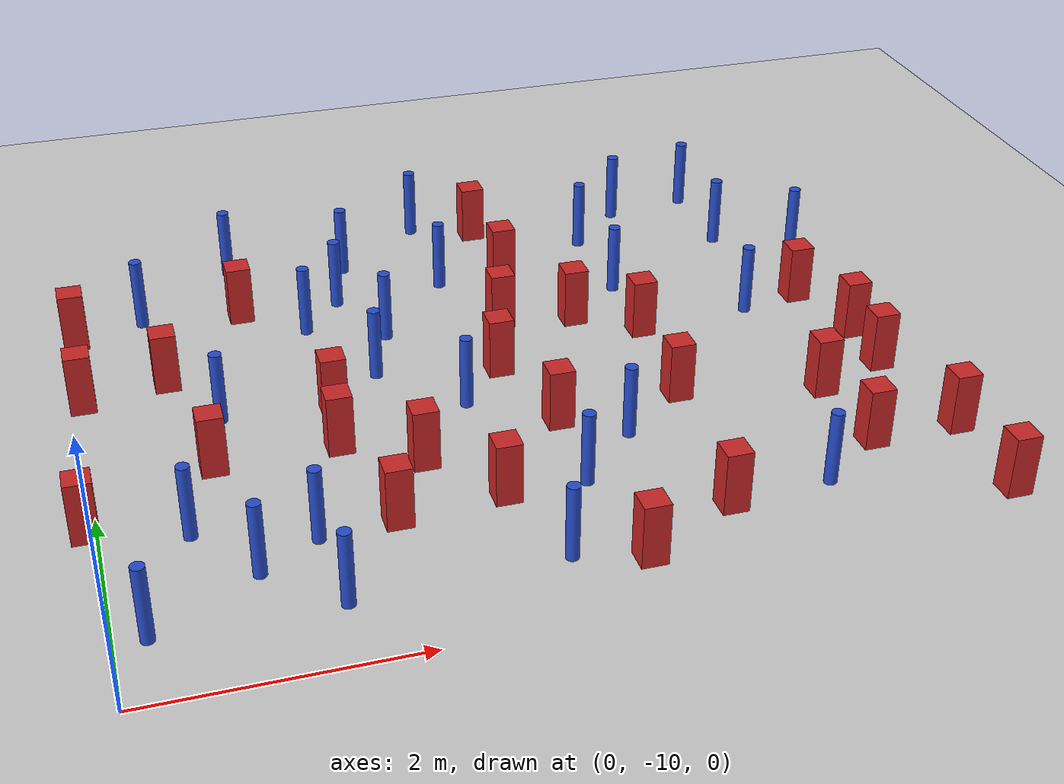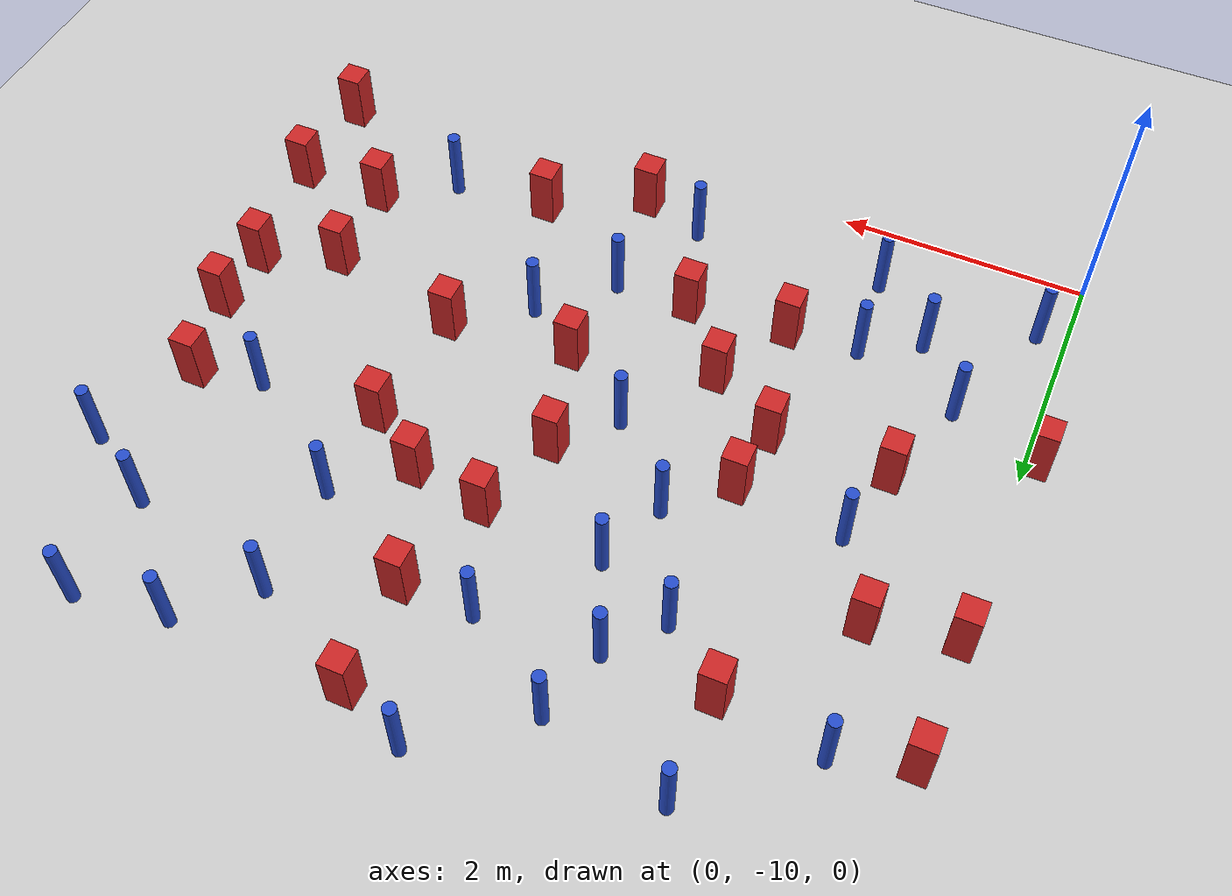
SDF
<sdf version="1.6">
 <world name="default">
  <model name="ground_plane">
   <static>1</static>
   <link name="link">
    <collision name="collision">
     <geometry><plane><normal>0 0 1</normal><size>100 100</size></plane></geometry>
     <surface><friction><ode><mu>100</mu><mu2>50</mu2></ode></friction></surface>
    </collision>
    <visual name="visual">
     <cast_shadows>0</cast_shadows>
     <geometry><plane><normal>0 0 1</normal><size>100 100</size></plane></geometry>
     <material>
      <ambient>1.0 1.0 1.0 1.0</ambient>
      <diffuse>0.8 0.8 0.8 1.0</diffuse>
      <specular>0.01 0.01 0.01 1.000000</specular>
     </material>
    </visual>
   </link>
  </model>
  <model name="pole_obstacle0">
   <static>true</static>
   <pose>5.14910917983 -9.02479563036 2.88873142074e-08 -9.9053668967e-09 4.60219948993e-07 -1.20965994957e-07</pose>
   <link name="link">
    <pose>0 0 0.3 0 -0 0</pose>
    <inertial>
     <mass>1</mass>
     <inertia><ixx>0.145833</ixx><ixy>0</ixy><ixz>0</ixz><iyy>0.145833</iyy><iyz>0</iyz><izz>0.125</izz></inertia>
    </inertial>
    <collision name="collision">
     <geometry><cylinder><radius>0.05</radius><length>.6</length></cylinder></geometry>
    </collision>
    <visual name="visual">
     <geometry><cylinder><radius>0.05</radius><length>.6</length></cylinder></geometry>
     <material>
      <script><name>Gazebo/Blue</name><uri>file://media/materials/scripts/gazebo.material</uri></script>
     </material>
    </visual>
   </link>
  </model>
  <model name="pole_obstacle2">
   <static>true</static>
   <pose>1.01651458315 -8.93385281026 2.88873142074e-08 -9.90536690572e-09 4.60219948972e-07 -1.20965994971e-07</pose>
   <link name="link">
    <pose>0 0 0.3 0 -0 0</pose>
    <inertial>
     <mass>1</mass>
     <inertia><ixx>0.145833</ixx><ixy>0</ixy><ixz>0</ixz><iyy>0.145833</iyy><iyz>0</iyz><izz>0.125</izz></inertia>
    </inertial>
    <collision name="collision">
     <geometry><cylinder><radius>0.05</radius><length>.6</length></cylinder></geometry>
    </collision>
    <visual name="visual">
     <geometry><cylinder><radius>0.05</radius><length>.6</length></cylinder></geometry>
     <material>
      <script><name>Gazebo/Blue</name><uri>file://media/materials/scripts/gazebo.material</uri></script>
     </material>
    </visual>
   </link>
  </model>
  <model name="square_post_obstacle6">
   <static>true</static>
   <pose>6.38686492071 -8.62933674588 8.22691968438e-08 7.22125133819e-06 -7.54495500217e-07 2.29674213826e-05</pose>
   <link name="link">
    <pose>0 0 0.25 0 -0 0</pose>
    <inertial>
     <mass>100</mass>
     <inertia>
      <ixx>0.166667</ixx>
      <ixy>0</ixy>
      <ixz>0</ixz>
      <iyy>0.166667</iyy>
      <iyz>0</iyz>
      <izz>0.166667</izz>
     </inertia>
    </inertial>
    <collision name="collision"><geometry><box><size>.2 .2 .5</size></box></geometry></collision>
    <visual name="visual">
     <geometry><box><size>.2 .2 .5</size></box></geometry>
     <material>
      <script><name>Gazebo/Red</name><uri>file://media/materials/scripts/gazebo.material</uri></script>
     </material>
    </visual>
   </link>
  </model>
  <model name="square_post_obstacle9">
   <static>true</static>
   <pose>0.0334384078424 -5.51936645068 8.22691968438e-08 7.22125133819e-06 -7.54495500217e-07 2.29674213826e-05</pose>
   <link name="link">
    <pose>0 0 0.25 0 -0 0</pose>
    <inertial>
     <mass>100</mass>
     <inertia>
      <ixx>0.166667</ixx>
      <ixy>0</ixy>
      <ixz>0</ixz>
      <iyy>0.166667</iyy>
      <iyz>0</iyz>
      <izz>0.166667</izz>
     </inertia>
    </inertial>
    <collision name="collision"><geometry><box><size>.2 .2 .5</size></box></geometry></collision>
    <visual name="visual">
     <geometry><box><size>.2 .2 .5</size></box></geometry>
     <material>
      <script><name>Gazebo/Red</name><uri>file://media/materials/scripts/gazebo.material</uri></script>
     </material>
    </visual>
   </link>
  </model>
  <model name="square_post_obstacle14">
   <static>true</static>
   <pose>3.66599458172 -4.5079094734 8.22691968438e-08 7.2212513382e-06 -7.54495500217e-07 2.29674213826e-05</pose>
   <link name="link">
    <pose>0 0 0.25 0 -0 0</pose>
    <inertial>
     <mass>100</mass>
     <inertia>
      <ixx>0.166667</ixx>
      <ixy>0</ixy>
      <ixz>0</ixz>
      <iyy>0.166667</iyy>
      <iyz>0</iyz>
      <izz>0.166667</izz>
     </inertia>
    </inertial>
    <collision name="collision"><geometry><box><size>.2 .2 .5</size></box></geometry></collision>
    <visual name="visual">
     <geometry><box><size>.2 .2 .5</size></box></geometry>
     <material>
      <script><name>Gazebo/Red</name><uri>file://media/materials/scripts/gazebo.material</uri></script>
     </material>
    </visual>
   </link>
  </model>
  <model name="square_post_obstacle20">
   <static>true</static>
   <pose>4.57043404995 -6.5960539329 8.22691968438e-08 7.2212513382e-06 -7.54495500217e-07 2.29674213826e-05</pose>
   <link name="link">
    <pose>0 0 0.25 0 -0 0</pose>
    <inertial>
     <mass>100</mass>
     <inertia>
      <ixx>0.166667</ixx>
      <ixy>0</ixy>
      <ixz>0</ixz>
      <iyy>0.166667</iyy>
      <iyz>0</iyz>
      <izz>0.166667</izz>
     </inertia>
    </inertial>
    <collision name="collision"><geometry><box><size>.2 .2 .5</size></box></geometry></collision>
    <visual name="visual">
     <geometry><box><size>.2 .2 .5</size></box></geometry>
     <material>
      <script><name>Gazebo/Red</name><uri>file://media/materials/scripts/gazebo.material</uri></script>
     </material>
    </visual>
   </link>
  </model>
  <model name="pole_obstacle13">
   <static>true</static>
   <pose>0.5886096068 -5.3329055556 2.88873142074e-08 -9.90536689661e-09 4.60219948993e-07 -1.20965994957e-07</pose>
   <link name="link">
    <pose>0 0 0.3 0 -0 0</pose>
    <inertial>
     <mass>1</mass>
     <inertia><ixx>0.145833</ixx><ixy>0</ixy><ixz>0</ixz><iyy>0.145833</iyy><iyz>0</iyz><izz>0.125</izz></inertia>
    </inertial>
    <collision name="collision">
     <geometry><cylinder><radius>0.05</radius><length>.6</length></cylinder></geometry>
    </collision>
    <visual name="visual">
     <geometry><cylinder><radius>0.05</radius><length>.6</length></cylinder></geometry>
     <material>
      <script><name>Gazebo/Blue</name><uri>file://media/materials/scripts/gazebo.material</uri></script>
     </material>
    </visual>
   </link>
  </model>
  <model name="pole_obstacle17">
   <static>true</static>
   <pose>2.51113615709 -6.10561424952 2.88873142074e-08 -9.90536689859e-09 4.60219948989e-07 -1.20965994961e-07</pose>
   <link name="link">
    <pose>0 0 0.3 0 -0 0</pose>
    <inertial>
     <mass>1</mass>
     <inertia><ixx>0.145833</ixx><ixy>0</ixy><ixz>0</ixz><iyy>0.145833</iyy><iyz>0</iyz><izz>0.125</izz></inertia>
    </inertial>
    <collision name="collision">
     <geometry><cylinder><radius>0.05</radius><length>.6</length></cylinder></geometry>
    </collision>
    <visual name="visual">
     <geometry><cylinder><radius>0.05</radius><length>.6</length></cylinder></geometry>
     <material>
      <script><name>Gazebo/Blue</name><uri>file://media/materials/scripts/gazebo.material</uri></script>
     </material>
    </visual>
   </link>
  </model>
  <model name="pole_obstacle31">
   <static>true</static>
   <pose>3.45618094568 -8.53882171861 2.88873142074e-08 -9.90536692318e-09 4.6021994893e-07 -1.20965994988e-07</pose>
   <link name="link">
    <pose>0 0 0.3 0 -0 0</pose>
    <inertial>
     <mass>1</mass>
     <inertia><ixx>0.145833</ixx><ixy>0</ixy><ixz>0</ixz><iyy>0.145833</iyy><iyz>0</iyz><izz>0.125</izz></inertia>
    </inertial>
    <collision name="collision">
     <geometry><cylinder><radius>0.05</radius><length>.6</length></cylinder></geometry>
    </collision>
    <visual name="visual">
     <geometry><cylinder><radius>0.05</radius><length>.6</length></cylinder></geometry>
     <material>
      <script><name>Gazebo/Blue</name><uri>file://media/materials/scripts/gazebo.material</uri></script>
     </material>
    </visual>
   </link>
  </model>
  <model name="pole_obstacle32">
   <static>true</static>
   <pose>2.2271813927 -5.4388012948 2.88873142074e-08 -9.90536689859e-09 4.60219948989e-07 -1.20965994961e-07</pose>
   <link name="link">
    <pose>0 0 0.3 0 -0 0</pose>
    <inertial>
     <mass>1</mass>
     <inertia><ixx>0.145833</ixx><ixy>0</ixy><ixz>0</ixz><iyy>0.145833</iyy><iyz>0</iyz><izz>0.125</izz></inertia>
    </inertial>
    <collision name="collision">
     <geometry><cylinder><radius>0.05</radius><length>.6</length></cylinder></geometry>
    </collision>
    <visual name="visual">
     <geometry><cylinder><radius>0.05</radius><length>.6</length></cylinder></geometry>
     <material>
      <script><name>Gazebo/Blue</name><uri>file://media/materials/scripts/gazebo.material</uri></script>
     </material>
    </visual>
   </link>
  </model>
  <model name="pole_obstacle33">
   <static>true</static>
   <pose>0.619765567572 -8.38592738012 2.88873142074e-08 -9.90536690779e-09 4.60219948967e-07 -1.20965994975e-07</pose>
   <link name="link">
    <pose>0 0 0.3 0 -0 0</pose>
    <inertial>
     <mass>1</mass>
     <inertia><ixx>0.145833</ixx><ixy>0</ixy><ixz>0</ixz><iyy>0.145833</iyy><iyz>0</iyz><izz>0.125</izz></inertia>
    </inertial>
    <collision name="collision">
     <geometry><cylinder><radius>0.05</radius><length>.6</length></cylinder></geometry>
    </collision>
    <visual name="visual">
     <geometry><cylinder><radius>0.05</radius><length>.6</length></cylinder></geometry>
     <material>
      <script><name>Gazebo/Blue</name><uri>file://media/materials/scripts/gazebo.material</uri></script>
     </material>
    </visual>
   </link>
  </model>
  <model name="square_post_obstacle39">
   <static>true</static>
   <pose>0.0210147186604 -6.50281022055 8.22691968438e-08 7.22125133819e-06 -7.54495500217e-07 2.29674213826e-05</pose>
   <link name="link">
    <pose>0 0 0.25 0 -0 0</pose>
    <inertial>
     <mass>100</mass>
     <inertia>
      <ixx>0.166667</ixx>
      <ixy>0</ixy>
      <ixz>0</ixz>
      <iyy>0.166667</iyy>
      <iyz>0</iyz>
      <izz>0.166667</izz>
     </inertia>
    </inertial>
    <collision name="collision"><geometry><box><size>.2 .2 .5</size></box></geometry></collision>
    <visual name="visual">
     <geometry><box><size>.2 .2 .5</size></box></geometry>
     <material>
      <script><name>Gazebo/Red</name><uri>file://media/materials/scripts/gazebo.material</uri></script>
     </material>
    </visual>
   </link>
  </model>
  <model name="pole_obstacle44">
   <static>true</static>
   <pose>5.05052122795 -4.48430584861 2.88873142074e-08 -9.90536690842e-09 4.60219948965e-07 -1.20965994976e-07</pose>
   <link name="link">
    <pose>0 0 0.3 0 -0 0</pose>
    <inertial>
     <mass>1</mass>
     <inertia><ixx>0.145833</ixx><ixy>0</ixy><ixz>0</ixz><iyy>0.145833</iyy><iyz>0</iyz><izz>0.125</izz></inertia>
    </inertial>
    <collision name="collision">
     <geometry><cylinder><radius>0.05</radius><length>.6</length></cylinder></geometry>
    </collision>
    <visual name="visual">
     <geometry><cylinder><radius>0.05</radius><length>.6</length></cylinder></geometry>
     <material>
      <script><name>Gazebo/Blue</name><uri>file://media/materials/scripts/gazebo.material</uri></script>
     </material>
    </visual>
   </link>
  </model>
  <model name="square_post_obstacle49">
   <static>true</static>
   <pose>-0.0797920035344 -8.17049762394 8.22691968438e-08 7.22125133819e-06 -7.54495500217e-07 2.29674213826e-05</pose>
   <link name="link">
    <pose>0 0 0.25 0 -0 0</pose>
    <inertial>
     <mass>100</mass>
     <inertia>
      <ixx>0.166667</ixx>
      <ixy>0</ixy>
      <ixz>0</ixz>
      <iyy>0.166667</iyy>
      <iyz>0</iyz>
      <izz>0.166667</izz>
     </inertia>
    </inertial>
    <collision name="collision"><geometry><box><size>.2 .2 .5</size></box></geometry></collision>
    <visual name="visual">
     <geometry><box><size>.2 .2 .5</size></box></geometry>
     <material>
      <script><name>Gazebo/Red</name><uri>file://media/materials/scripts/gazebo.material</uri></script>
     </material>
    </visual>
   </link>
  </model>
  <model name="square_post_obstacle53">
   <static>true</static>
   <pose>1.40103621941 -5.43967341655 8.22691968438e-08 7.2212513382e-06 -7.54495500217e-07 2.29674213826e-05</pose>
   <link name="link">
    <pose>0 0 0.25 0 -0 0</pose>
    <inertial>
     <mass>100</mass>
     <inertia>
      <ixx>0.166667</ixx>
      <ixy>0</ixy>
      <ixz>0</ixz>
      <iyy>0.166667</iyy>
      <iyz>0</iyz>
      <izz>0.166667</izz>
     </inertia>
    </inertial>
    <collision name="collision"><geometry><box><size>.2 .2 .5</size></box></geometry></collision>
    <visual name="visual">
     <geometry><box><size>.2 .2 .5</size></box></geometry>
     <material>
      <script><name>Gazebo/Red</name><uri>file://media/materials/scripts/gazebo.material</uri></script>
     </material>
    </visual>
   </link>
  </model>
  <model name="square_post_obstacle56">
   <static>true</static>
   <pose>2.84119729105 -8.54585071767 8.22691968438e-08 7.22125133819e-06 -7.54495500217e-07 2.29674213826e-05</pose>
   <link name="link">
    <pose>0 0 0.25 0 -0 0</pose>
    <inertial>
     <mass>100</mass>
     <inertia>
      <ixx>0.166667</ixx>
      <ixy>0</ixy>
      <ixz>0</ixz>
      <iyy>0.166667</iyy>
      <iyz>0</iyz>
      <izz>0.166667</izz>
     </inertia>
    </inertial>
    <collision name="collision"><geometry><box><size>.2 .2 .5</size></box></geometry></collision>
    <visual name="visual">
     <geometry><box><size>.2 .2 .5</size></box></geometry>
     <material>
      <script><name>Gazebo/Red</name><uri>file://media/materials/scripts/gazebo.material</uri></script>
     </material>
    </visual>
   </link>
  </model>
  <model name="square_post_obstacle59">
   <static>true</static>
   <pose>3.26289226047 -6.87089286653 8.22691968438e-08 7.2212513382e-06 -7.54495500217e-07 2.29674213826e-05</pose>
   <link name="link">
    <pose>0 0 0.25 0 -0 0</pose>
    <inertial>
     <mass>100</mass>
     <inertia>
      <ixx>0.166667</ixx>
      <ixy>0</ixy>
      <ixz>0</ixz>
      <iyy>0.166667</iyy>
      <iyz>0</iyz>
      <izz>0.166667</izz>
     </inertia>
    </inertial>
    <collision name="collision"><geometry><box><size>.2 .2 .5</size></box></geometry></collision>
    <visual name="visual">
     <geometry><box><size>.2 .2 .5</size></box></geometry>
     <material>
      <script><name>Gazebo/Red</name><uri>file://media/materials/scripts/gazebo.material</uri></script>
     </material>
    </visual>
   </link>
  </model>
  <model name="pole_obstacle58">
   <static>true</static>
   <pose>5.78311774972 -5.23182732564 2.88873142074e-08 -9.90536690842e-09 4.60219948965e-07 -1.20965994976e-07</pose>
   <link name="link">
    <pose>0 0 0.3 0 -0 0</pose>
    <inertial>
     <mass>1</mass>
     <inertia><ixx>0.145833</ixx><ixy>0</ixy><ixz>0</ixz><iyy>0.145833</iyy><iyz>0</iyz><izz>0.125</izz></inertia>
    </inertial>
    <collision name="collision">
     <geometry><cylinder><radius>0.05</radius><length>.6</length></cylinder></geometry>
    </collision>
    <visual name="visual">
     <geometry><cylinder><radius>0.05</radius><length>.6</length></cylinder></geometry>
     <material>
      <script><name>Gazebo/Blue</name><uri>file://media/materials/scripts/gazebo.material</uri></script>
     </material>
    </visual>
   </link>
  </model>
  <model name="pole_obstacle59">
   <static>true</static>
   <pose>2.39316622033 -4.8642956276 2.88873142074e-08 -9.90536689859e-09 4.60219948989e-07 -1.20965994961e-07</pose>
   <link name="link">
    <pose>0 0 0.3 0 -0 0</pose>
    <inertial>
     <mass>1</mass>
     <inertia><ixx>0.145833</ixx><ixy>0</ixy><ixz>0</ixz><iyy>0.145833</iyy><iyz>0</iyz><izz>0.125</izz></inertia>
    </inertial>
    <collision name="collision">
     <geometry><cylinder><radius>0.05</radius><length>.6</length></cylinder></geometry>
    </collision>
    <visual name="visual">
     <geometry><cylinder><radius>0.05</radius><length>.6</length></cylinder></geometry>
     <material>
      <script><name>Gazebo/Blue</name><uri>file://media/materials/scripts/gazebo.material</uri></script>
     </material>
    </visual>
   </link>
  </model>
  <model name="square_post_obstacle62">
   <static>true</static>
   <pose>0.682016746237 -6.36415014247 8.22691968438e-08 7.2212513382e-06 -7.54495500217e-07 2.29674213826e-05</pose>
   <link name="link">
    <pose>0 0 0.25 0 -0 0</pose>
    <inertial>
     <mass>100</mass>
     <inertia>
      <ixx>0.166667</ixx>
      <ixy>0</ixy>
      <ixz>0</ixz>
      <iyy>0.166667</iyy>
      <iyz>0</iyz>
      <izz>0.166667</izz>
     </inertia>
    </inertial>
    <collision name="collision"><geometry><box><size>.2 .2 .5</size></box></geometry></collision>
    <visual name="visual">
     <geometry><box><size>.2 .2 .5</size></box></geometry>
     <material>
      <script><name>Gazebo/Red</name><uri>file://media/materials/scripts/gazebo.material</uri></script>
     </material>
    </visual>
   </link>
  </model>
  <model name="square_post_obstacle63">
   <static>true</static>
   <pose>1.88041286804 -7.075071887 8.22691968438e-08 7.2212513382e-06 -7.54495500217e-07 2.29674213826e-05</pose>
   <link name="link">
    <pose>0 0 0.25 0 -0 0</pose>
    <inertial>
     <mass>100</mass>
     <inertia>
      <ixx>0.166667</ixx>
      <ixy>0</ixy>
      <ixz>0</ixz>
      <iyy>0.166667</iyy>
      <iyz>0</iyz>
      <izz>0.166667</izz>
     </inertia>
    </inertial>
    <collision name="collision"><geometry><box><size>.2 .2 .5</size></box></geometry></collision>
    <visual name="visual">
     <geometry><box><size>.2 .2 .5</size></box></geometry>
     <material>
      <script><name>Gazebo/Red</name><uri>file://media/materials/scripts/gazebo.material</uri></script>
     </material>
    </visual>
   </link>
  </model>
  <model name="pole_obstacle64">
   <static>true</static>
   <pose>0.227239558759 -9.38797439149 2.88873142074e-08 -9.90536690859e-09 4.60219948965e-07 -1.20965994976e-07</pose>
   <link name="link">
    <pose>0 0 0.3 0 -0 0</pose>
    <inertial>
     <mass>1</mass>
     <inertia><ixx>0.145833</ixx><ixy>0</ixy><ixz>0</ixz><iyy>0.145833</iyy><iyz>0</iyz><izz>0.125</izz></inertia>
    </inertial>
    <collision name="collision">
     <geometry><cylinder><radius>0.05</radius><length>.6</length></cylinder></geometry>
    </collision>
    <visual name="visual">
     <geometry><cylinder><radius>0.05</radius><length>.6</length></cylinder></geometry>
     <material>
      <script><name>Gazebo/Blue</name><uri>file://media/materials/scripts/gazebo.material</uri></script>
     </material>
    </visual>
   </link>
  </model>
  <model name="square_post_obstacle71">
   <static>true</static>
   <pose>3.71542208929 -5.35867375812 8.22691968438e-08 7.22125133819e-06 -7.54495500217e-07 2.29674213826e-05</pose>
   <link name="link">
    <pose>0 0 0.25 0 -0 0</pose>
    <inertial>
     <mass>100</mass>
     <inertia>
      <ixx>0.166667</ixx>
      <ixy>0</ixy>
      <ixz>0</ixz>
      <iyy>0.166667</iyy>
      <iyz>0</iyz>
      <izz>0.166667</izz>
     </inertia>
    </inertial>
    <collision name="collision"><geometry><box><size>.2 .2 .5</size></box></geometry></collision>
    <visual name="visual">
     <geometry><box><size>.2 .2 .5</size></box></geometry>
     <material>
      <script><name>Gazebo/Red</name><uri>file://media/materials/scripts/gazebo.material</uri></script>
     </material>
    </visual>
   </link>
  </model>
  <model name="pole_obstacle79">
   <static>true</static>
   <pose>3.14856670522 -4.28808477071 2.88873142074e-08 -9.90536689859e-09 4.60219948989e-07 -1.20965994961e-07</pose>
   <link name="link">
    <pose>0 0 0.3 0 -0 0</pose>
    <inertial>
     <mass>1</mass>
     <inertia><ixx>0.145833</ixx><ixy>0</ixy><ixz>0</ixz><iyy>0.145833</iyy><iyz>0</iyz><izz>0.125</izz></inertia>
    </inertial>
    <collision name="collision">
     <geometry><cylinder><radius>0.05</radius><length>.6</length></cylinder></geometry>
    </collision>
    <visual name="visual">
     <geometry><cylinder><radius>0.05</radius><length>.6</length></cylinder></geometry>
     <material>
      <script><name>Gazebo/Blue</name><uri>file://media/materials/scripts/gazebo.material</uri></script>
     </material>
    </visual>
   </link>
  </model>
  <model name="pole_obstacle82">
   <static>true</static>
   <pose>5.54813461578 -6.51591520535 2.88873142074e-08 -9.90536690842e-09 4.60219948965e-07 -1.20965994976e-07</pose>
   <link name="link">
    <pose>0 0 0.3 0 -0 0</pose>
    <inertial>
     <mass>1</mass>
     <inertia><ixx>0.145833</ixx><ixy>0</ixy><ixz>0</ixz><iyy>0.145833</iyy><iyz>0</iyz><izz>0.125</izz></inertia>
    </inertial>
    <collision name="collision">
     <geometry><cylinder><radius>0.05</radius><length>.6</length></cylinder></geometry>
    </collision>
    <visual name="visual">
     <geometry><cylinder><radius>0.05</radius><length>.6</length></cylinder></geometry>
     <material>
      <script><name>Gazebo/Blue</name><uri>file://media/materials/scripts/gazebo.material</uri></script>
     </material>
    </visual>
   </link>
  </model>
  <model name="pole_obstacle87">
   <static>true</static>
   <pose>5.77335011089 -4.37929048621 2.88873142074e-08 -9.90536690842e-09 4.60219948965e-07 -1.20965994976e-07</pose>
   <link name="link">
    <pose>0 0 0.3 0 -0 0</pose>
    <inertial>
     <mass>1</mass>
     <inertia><ixx>0.145833</ixx><ixy>0</ixy><ixz>0</ixz><iyy>0.145833</iyy><iyz>0</iyz><izz>0.125</izz></inertia>
    </inertial>
    <collision name="collision">
     <geometry><cylinder><radius>0.05</radius><length>.6</length></cylinder></geometry>
    </collision>
    <visual name="visual">
     <geometry><cylinder><radius>0.05</radius><length>.6</length></cylinder></geometry>
     <material>
      <script><name>Gazebo/Blue</name><uri>file://media/materials/scripts/gazebo.material</uri></script>
     </material>
    </visual>
   </link>
  </model>
  <model name="square_post_obstacle82">
   <static>true</static>
   <pose>6.25093049792 -7.10068966913 8.22691968438e-08 7.22125133819e-06 -7.54495500217e-07 2.29674213826e-05</pose>
   <link name="link">
    <pose>0 0 0.25 0 -0 0</pose>
    <inertial>
     <mass>100</mass>
     <inertia>
      <ixx>0.166667</ixx>
      <ixy>0</ixy>
      <ixz>0</ixz>
      <iyy>0.166667</iyy>
      <iyz>0</iyz>
      <izz>0.166667</izz>
     </inertia>
    </inertial>
    <collision name="collision"><geometry><box><size>.2 .2 .5</size></box></geometry></collision>
    <visual name="visual">
     <geometry><box><size>.2 .2 .5</size></box></geometry>
     <material>
      <script><name>Gazebo/Red</name><uri>file://media/materials/scripts/gazebo.material</uri></script>
     </material>
    </visual>
   </link>
  </model>
  <model name="pole_obstacle90">
   <static>true</static>
   <pose>4.56856168369 -4.95334819536 2.88873142074e-08 -9.90536690842e-09 4.60219948965e-07 -1.20965994976e-07</pose>
   <link name="link">
    <pose>0 0 0.3 0 -0 0</pose>
    <inertial>
     <mass>1</mass>
     <inertia><ixx>0.145833</ixx><ixy>0</ixy><ixz>0</ixz><iyy>0.145833</iyy><iyz>0</iyz><izz>0.125</izz></inertia>
    </inertial>
    <collision name="collision">
     <geometry><cylinder><radius>0.05</radius><length>.6</length></cylinder></geometry>
    </collision>
    <visual name="visual">
     <geometry><cylinder><radius>0.05</radius><length>.6</length></cylinder></geometry>
     <material>
      <script><name>Gazebo/Blue</name><uri>file://media/materials/scripts/gazebo.material</uri></script>
     </material>
    </visual>
   </link>
  </model>
  <model name="pole_obstacle93">
   <static>true</static>
   <pose>2.30316659559 -6.67668703031 2.88873142074e-08 -9.90536689859e-09 4.60219948989e-07 -1.20965994961e-07</pose>
   <link name="link">
    <pose>0 0 0.3 0 -0 0</pose>
    <inertial>
     <mass>1</mass>
     <inertia><ixx>0.145833</ixx><ixy>0</ixy><ixz>0</ixz><iyy>0.145833</iyy><iyz>0</iyz><izz>0.125</izz></inertia>
    </inertial>
    <collision name="collision">
     <geometry><cylinder><radius>0.05</radius><length>.6</length></cylinder></geometry>
    </collision>
    <visual name="visual">
     <geometry><cylinder><radius>0.05</radius><length>.6</length></cylinder></geometry>
     <material>
      <script><name>Gazebo/Blue</name><uri>file://media/materials/scripts/gazebo.material</uri></script>
     </material>
    </visual>
   </link>
  </model>
  <model name="square_post_obstacle88">
   <static>true</static>
   <pose>2.38210920018 -7.97160484925 8.22691968438e-08 7.2212513382e-06 -7.54495500217e-07 2.29674213826e-05</pose>
   <link name="link">
    <pose>0 0 0.25 0 -0 0</pose>
    <inertial>
     <mass>100</mass>
     <inertia>
      <ixx>0.166667</ixx>
      <ixy>0</ixy>
      <ixz>0</ixz>
      <iyy>0.166667</iyy>
      <iyz>0</iyz>
      <izz>0.166667</izz>
     </inertia>
    </inertial>
    <collision name="collision"><geometry><box><size>.2 .2 .5</size></box></geometry></collision>
    <visual name="visual">
     <geometry><box><size>.2 .2 .5</size></box></geometry>
     <material>
      <script><name>Gazebo/Red</name><uri>file://media/materials/scripts/gazebo.material</uri></script>
     </material>
    </visual>
   </link>
  </model>
  <model name="square_post_obstacle97">
   <static>true</static>
   <pose>3.49277680464 -7.72902521099 8.22691968438e-08 7.22125133819e-06 -7.54495500217e-07 2.29674213826e-05</pose>
   <link name="link">
    <pose>0 0 0.25 0 -0 0</pose>
    <inertial>
     <mass>100</mass>
     <inertia>
      <ixx>0.166667</ixx>
      <ixy>0</ixy>
      <ixz>0</ixz>
      <iyy>0.166667</iyy>
      <iyz>0</iyz>
      <izz>0.166667</izz>
     </inertia>
    </inertial>
    <collision name="collision"><geometry><box><size>.2 .2 .5</size></box></geometry></collision>
    <visual name="visual">
     <geometry><box><size>.2 .2 .5</size></box></geometry>
     <material>
      <script><name>Gazebo/Red</name><uri>file://media/materials/scripts/gazebo.material</uri></script>
     </material>
    </visual>
   </link>
  </model>
  <model name="square_post_obstacle113">
   <static>true</static>
   <pose>0.882806053921 -7.61858897584 8.22691968438e-08 7.22125133819e-06 -7.54495500217e-07 2.29674213826e-05</pose>
   <link name="link">
    <pose>0 0 0.25 0 -0 0</pose>
    <inertial>
     <mass>100</mass>
     <inertia>
      <ixx>0.166667</ixx>
      <ixy>0</ixy>
      <ixz>0</ixz>
      <iyy>0.166667</iyy>
      <iyz>0</iyz>
      <izz>0.166667</izz>
     </inertia>
    </inertial>
    <collision name="collision"><geometry><box><size>.2 .2 .5</size></box></geometry></collision>
    <visual name="visual">
     <geometry><box><size>.2 .2 .5</size></box></geometry>
     <material>
      <script><name>Gazebo/Red</name><uri>file://media/materials/scripts/gazebo.material</uri></script>
     </material>
    </visual>
   </link>
  </model>
  <model name="pole_obstacle133">
   <static>true</static>
   <pose>1.5234280148 -9.40022721178 2.88873142074e-08 -9.90536690474e-09 4.60219948974e-07 -1.2096599497e-07</pose>
   <link name="link">
    <pose>0 0 0.3 0 -0 0</pose>
    <inertial>
     <mass>1</mass>
     <inertia><ixx>0.145833</ixx><ixy>0</ixy><ixz>0</ixz><iyy>0.145833</iyy><iyz>0</iyz><izz>0.125</izz></inertia>
    </inertial>
    <collision name="collision">
     <geometry><cylinder><radius>0.05</radius><length>.6</length></cylinder></geometry>
    </collision>
    <visual name="visual">
     <geometry><cylinder><radius>0.05</radius><length>.6</length></cylinder></geometry>
     <material>
      <script><name>Gazebo/Blue</name><uri>file://media/materials/scripts/gazebo.material</uri></script>
     </material>
    </visual>
   </link>
  </model>
  <model name="square_post_obstacle115">
   <static>true</static>
   <pose>4.34577326349 -9.09420839535 8.22691968438e-08 7.2212513382e-06 -7.54495500217e-07 2.29674213826e-05</pose>
   <link name="link">
    <pose>0 0 0.25 0 -0 0</pose>
    <inertial>
     <mass>100</mass>
     <inertia>
      <ixx>0.166667</ixx>
      <ixy>0</ixy>
      <ixz>0</ixz>
      <iyy>0.166667</iyy>
      <iyz>0</iyz>
      <izz>0.166667</izz>
     </inertia>
    </inertial>
    <collision name="collision"><geometry><box><size>.2 .2 .5</size></box></geometry></collision>
    <visual name="visual">
     <geometry><box><size>.2 .2 .5</size></box></geometry>
     <material>
      <script><name>Gazebo/Red</name><uri>file://media/materials/scripts/gazebo.material</uri></script>
     </material>
    </visual>
   </link>
  </model>
  <model name="square_post_obstacle116">
   <static>true</static>
   <pose>4.50310907179 -7.61560926344 8.22691968438e-08 7.2212513382e-06 -7.54495500217e-07 2.29674213826e-05</pose>
   <link name="link">
    <pose>0 0 0.25 0 -0 0</pose>
    <inertial>
     <mass>100</mass>
     <inertia>
      <ixx>0.166667</ixx>
      <ixy>0</ixy>
      <ixz>0</ixz>
      <iyy>0.166667</iyy>
      <iyz>0</iyz>
      <izz>0.166667</izz>
     </inertia>
    </inertial>
    <collision name="collision"><geometry><box><size>.2 .2 .5</size></box></geometry></collision>
    <visual name="visual">
     <geometry><box><size>.2 .2 .5</size></box></geometry>
     <material>
      <script><name>Gazebo/Red</name><uri>file://media/materials/scripts/gazebo.material</uri></script>
     </material>
    </visual>
   </link>
  </model>
  <model name="square_post_obstacle121">
   <static>true</static>
   <pose>5.67551864861 -8.63707014586 8.22691968438e-08 7.2212513382e-06 -7.54495500217e-07 2.29674213826e-05</pose>
   <link name="link">
    <pose>0 0 0.25 0 -0 0</pose>
    <inertial>
     <mass>100</mass>
     <inertia>
      <ixx>0.166667</ixx>
      <ixy>0</ixy>
      <ixz>0</ixz>
      <iyy>0.166667</iyy>
      <iyz>0</iyz>
      <izz>0.166667</izz>
     </inertia>
    </inertial>
    <collision name="collision"><geometry><box><size>.2 .2 .5</size></box></geometry></collision>
    <visual name="visual">
     <geometry><box><size>.2 .2 .5</size></box></geometry>
     <material>
      <script><name>Gazebo/Red</name><uri>file://media/materials/scripts/gazebo.material</uri></script>
     </material>
    </visual>
   </link>
  </model>
  <model name="square_post_obstacle135">
   <static>true</static>
   <pose>5.62305476572 -7.87333489058 8.22691968438e-08 7.2212513382e-06 -7.54495500217e-07 2.29674213826e-05</pose>
   <link name="link">
    <pose>0 0 0.25 0 -0 0</pose>
    <inertial>
     <mass>100</mass>
     <inertia>
      <ixx>0.166667</ixx>
      <ixy>0</ixy>
      <ixz>0</ixz>
      <iyy>0.166667</iyy>
      <iyz>0</iyz>
      <izz>0.166667</izz>
     </inertia>
    </inertial>
    <collision name="collision"><geometry><box><size>.2 .2 .5</size></box></geometry></collision>
    <visual name="visual">
     <geometry><box><size>.2 .2 .5</size></box></geometry>
     <material>
      <script><name>Gazebo/Red</name><uri>file://media/materials/scripts/gazebo.material</uri></script>
     </material>
    </visual>
   </link>
  </model>
  <model name="pole_obstacle154">
   <static>true</static>
   <pose>4.59145503063 -5.84698076599 2.88873142074e-08 -9.90536690842e-09 4.60219948965e-07 -1.20965994976e-07</pose>
   <link name="link">
    <pose>0 0 0.3 0 -0 0</pose>
    <inertial>
     <mass>1</mass>
     <inertia><ixx>0.145833</ixx><ixy>0</ixy><ixz>0</ixz><iyy>0.145833</iyy><iyz>0</iyz><izz>0.125</izz></inertia>
    </inertial>
    <collision name="collision">
     <geometry><cylinder><radius>0.05</radius><length>.6</length></cylinder></geometry>
    </collision>
    <visual name="visual">
     <geometry><cylinder><radius>0.05</radius><length>.6</length></cylinder></geometry>
     <material>
      <script><name>Gazebo/Blue</name><uri>file://media/materials/scripts/gazebo.material</uri></script>
     </material>
    </visual>
   </link>
  </model>
  <model name="square_post_obstacle150">
   <static>true</static>
   <pose>4.08694229653 -6.26027086215 8.22691968438e-08 7.2212513382e-06 -7.54495500217e-07 2.29674213826e-05</pose>
   <link name="link">
    <pose>0 0 0.25 0 -0 0</pose>
    <inertial>
     <mass>100</mass>
     <inertia>
      <ixx>0.166667</ixx>
      <ixy>0</ixy>
      <ixz>0</ixz>
      <iyy>0.166667</iyy>
      <iyz>0</iyz>
      <izz>0.166667</izz>
     </inertia>
    </inertial>
    <collision name="collision"><geometry><box><size>.2 .2 .5</size></box></geometry></collision>
    <visual name="visual">
     <geometry><box><size>.2 .2 .5</size></box></geometry>
     <material>
      <script><name>Gazebo/Red</name><uri>file://media/materials/scripts/gazebo.material</uri></script>
     </material>
    </visual>
   </link>
  </model>
  <model name="pole_obstacle157">
   <static>true</static>
   <pose>1.40514613456 -4.62756444559 2.88873142074e-08 -9.90536689852e-09 4.60219948989e-07 -1.2096599496e-07</pose>
   <link name="link">
    <pose>0 0 0.3 0 -0 0</pose>
    <inertial>
     <mass>1</mass>
     <inertia><ixx>0.145833</ixx><ixy>0</ixy><ixz>0</ixz><iyy>0.145833</iyy><iyz>0</iyz><izz>0.125</izz></inertia>
    </inertial>
    <collision name="collision">
     <geometry><cylinder><radius>0.05</radius><length>.6</length></cylinder></geometry>
    </collision>
    <visual name="visual">
     <geometry><cylinder><radius>0.05</radius><length>.6</length></cylinder></geometry>
     <material>
      <script><name>Gazebo/Blue</name><uri>file://media/materials/scripts/gazebo.material</uri></script>
     </material>
    </visual>
   </link>
  </model>
  <model name="pole_obstacle159">
   <static>true</static>
   <pose>1.89239462025 -5.83658341239 2.88873142074e-08 -9.90536689852e-09 4.60219948989e-07 -1.2096599496e-07</pose>
   <link name="link">
    <pose>0 0 0.3 0 -0 0</pose>
    <inertial>
     <mass>1</mass>
     <inertia><ixx>0.145833</ixx><ixy>0</ixy><ixz>0</ixz><iyy>0.145833</iyy><iyz>0</iyz><izz>0.125</izz></inertia>
    </inertial>
    <collision name="collision">
     <geometry><cylinder><radius>0.05</radius><length>.6</length></cylinder></geometry>
    </collision>
    <visual name="visual">
     <geometry><cylinder><radius>0.05</radius><length>.6</length></cylinder></geometry>
     <material>
      <script><name>Gazebo/Blue</name><uri>file://media/materials/scripts/gazebo.material</uri></script>
     </material>
    </visual>
   </link>
  </model>
  <model name="pole_obstacle164">
   <static>true</static>
   <pose>2.88648929164 -7.29143955808 2.88873142074e-08 -9.90536689859e-09 4.60219948989e-07 -1.20965994961e-07</pose>
   <link name="link">
    <pose>0 0 0.3 0 -0 0</pose>
    <inertial>
     <mass>1</mass>
     <inertia><ixx>0.145833</ixx><ixy>0</ixy><ixz>0</ixz><iyy>0.145833</iyy><iyz>0</iyz><izz>0.125</izz></inertia>
    </inertial>
    <collision name="collision">
     <geometry><cylinder><radius>0.05</radius><length>.6</length></cylinder></geometry>
    </collision>
    <visual name="visual">
     <geometry><cylinder><radius>0.05</radius><length>.6</length></cylinder></geometry>
     <material>
      <script><name>Gazebo/Blue</name><uri>file://media/materials/scripts/gazebo.material</uri></script>
     </material>
    </visual>
   </link>
  </model>
  <model name="square_post_obstacle170">
   <static>true</static>
   <pose>2.03450549788 -8.61532259125 8.22691968438e-08 7.22125133819e-06 -7.54495500217e-07 2.29674213826e-05</pose>
   <link name="link">
    <pose>0 0 0.25 0 -0 0</pose>
    <inertial>
     <mass>100</mass>
     <inertia>
      <ixx>0.166667</ixx>
      <ixy>0</ixy>
      <ixz>0</ixz>
      <iyy>0.166667</iyy>
      <iyz>0</iyz>
      <izz>0.166667</izz>
     </inertia>
    </inertial>
    <collision name="collision"><geometry><box><size>.2 .2 .5</size></box></geometry></collision>
    <visual name="visual">
     <geometry><box><size>.2 .2 .5</size></box></geometry>
     <material>
      <script><name>Gazebo/Red</name><uri>file://media/materials/scripts/gazebo.material</uri></script>
     </material>
    </visual>
   </link>
  </model>
  <model name="pole_obstacle184">
   <static>true</static>
   <pose>6.38997671237 -5.59009487161 2.88873142074e-08 -9.90536690842e-09 4.60219948965e-07 -1.20965994976e-07</pose>
   <link name="link">
    <pose>0 0 0.3 0 -0 0</pose>
    <inertial>
     <mass>1</mass>
     <inertia><ixx>0.145833</ixx><ixy>0</ixy><ixz>0</ixz><iyy>0.145833</iyy><iyz>0</iyz><izz>0.125</izz></inertia>
    </inertial>
    <collision name="collision">
     <geometry><cylinder><radius>0.05</radius><length>.6</length></cylinder></geometry>
    </collision>
    <visual name="visual">
     <geometry><cylinder><radius>0.05</radius><length>.6</length></cylinder></geometry>
     <material>
      <script><name>Gazebo/Blue</name><uri>file://media/materials/scripts/gazebo.material</uri></script>
     </material>
    </visual>
   </link>
  </model>
  <model name="square_post_obstacle176">
   <static>true</static>
   <pose>6.37026278814 -9.4793602652 8.22691968438e-08 7.22125133819e-06 -7.54495500217e-07 2.29674213826e-05</pose>
   <link name="link">
    <pose>0 0 0.25 0 -0 0</pose>
    <inertial>
     <mass>100</mass>
     <inertia>
      <ixx>0.166667</ixx>
      <ixy>0</ixy>
      <ixz>0</ixz>
      <iyy>0.166667</iyy>
      <iyz>0</iyz>
      <izz>0.166667</izz>
     </inertia>
    </inertial>
    <collision name="collision"><geometry><box><size>.2 .2 .5</size></box></geometry></collision>
    <visual name="visual">
     <geometry><box><size>.2 .2 .5</size></box></geometry>
     <material>
      <script><name>Gazebo/Red</name><uri>file://media/materials/scripts/gazebo.material</uri></script>
     </material>
    </visual>
   </link>
  </model>
  <model name="square_post_obstacle187">
   <static>true</static>
   <pose>6.05604771275 -6.40952631212 8.22691968438e-08 7.2212513382e-06 -7.54495500217e-07 2.29674213826e-05</pose>
   <link name="link">
    <pose>0 0 0.25 0 -0 0</pose>
    <inertial>
     <mass>100</mass>
     <inertia>
      <ixx>0.166667</ixx>
      <ixy>0</ixy>
      <ixz>0</ixz>
      <iyy>0.166667</iyy>
      <iyz>0</iyz>
      <izz>0.166667</izz>
     </inertia>
    </inertial>
    <collision name="collision"><geometry><box><size>.2 .2 .5</size></box></geometry></collision>
    <visual name="visual">
     <geometry><box><size>.2 .2 .5</size></box></geometry>
     <material>
      <script><name>Gazebo/Red</name><uri>file://media/materials/scripts/gazebo.material</uri></script>
     </material>
    </visual>
   </link>
  </model>
  <model name="square_post_obstacle189">
   <static>true</static>
   <pose>6.22747408145 -7.63386962016 8.22691968438e-08 7.22125133819e-06 -7.54495500217e-07 2.29674213826e-05</pose>
   <link name="link">
    <pose>0 0 0.25 0 -0 0</pose>
    <inertial>
     <mass>100</mass>
     <inertia>
      <ixx>0.166667</ixx>
      <ixy>0</ixy>
      <ixz>0</ixz>
      <iyy>0.166667</iyy>
      <iyz>0</iyz>
      <izz>0.166667</izz>
     </inertia>
    </inertial>
    <collision name="collision"><geometry><box><size>.2 .2 .5</size></box></geometry></collision>
    <visual name="visual">
     <geometry><box><size>.2 .2 .5</size></box></geometry>
     <material>
      <script><name>Gazebo/Red</name><uri>file://media/materials/scripts/gazebo.material</uri></script>
     </material>
    </visual>
   </link>
  </model>
  <model name="square_post_obstacle191">
   <static>true</static>
   <pose>1.82126982011 -7.60363064925 8.22691968438e-08 7.2212513382e-06 -7.54495500217e-07 2.29674213826e-05</pose>
   <link name="link">
    <pose>0 0 0.25 0 -0 0</pose>
    <inertial>
     <mass>100</mass>
     <inertia>
      <ixx>0.166667</ixx>
      <ixy>0</ixy>
      <ixz>0</ixz>
      <iyy>0.166667</iyy>
      <iyz>0</iyz>
      <izz>0.166667</izz>
     </inertia>
    </inertial>
    <collision name="collision"><geometry><box><size>.2 .2 .5</size></box></geometry></collision>
    <visual name="visual">
     <geometry><box><size>.2 .2 .5</size></box></geometry>
     <material>
      <script><name>Gazebo/Red</name><uri>file://media/materials/scripts/gazebo.material</uri></script>
     </material>
    </visual>
   </link>
  </model>
  <model name="square_post_obstacle196">
   <static>true</static>
   <pose>3.58548924931 -9.49677544125 8.22691968438e-08 7.22125133819e-06 -7.54495500217e-07 2.29674213826e-05</pose>
   <link name="link">
    <pose>0 0 0.25 0 -0 0</pose>
    <inertial>
     <mass>100</mass>
     <inertia>
      <ixx>0.166667</ixx>
      <ixy>0</ixy>
      <ixz>0</ixz>
      <iyy>0.166667</iyy>
      <iyz>0</iyz>
      <izz>0.166667</izz>
     </inertia>
    </inertial>
    <collision name="collision"><geometry><box><size>.2 .2 .5</size></box></geometry></collision>
    <visual name="visual">
     <geometry><box><size>.2 .2 .5</size></box></geometry>
     <material>
      <script><name>Gazebo/Red</name><uri>file://media/materials/scripts/gazebo.material</uri></script>
     </material>
    </visual>
   </link>
  </model>
  <model name="square_post_obstacle201">
   <static>true</static>
   <pose>3.48176472967 -6.16036697833 8.22691968438e-08 7.2212513382e-06 -7.54495500217e-07 2.29674213826e-05</pose>
   <link name="link">
    <pose>0 0 0.25 0 -0 0</pose>
    <inertial>
     <mass>100</mass>
     <inertia>
      <ixx>0.166667</ixx>
      <ixy>0</ixy>
      <ixz>0</ixz>
      <iyy>0.166667</iyy>
      <iyz>0</iyz>
      <izz>0.166667</izz>
     </inertia>
    </inertial>
    <collision name="collision"><geometry><box><size>.2 .2 .5</size></box></geometry></collision>
    <visual name="visual">
     <geometry><box><size>.2 .2 .5</size></box></geometry>
     <material>
      <script><name>Gazebo/Red</name><uri>file://media/materials/scripts/gazebo.material</uri></script>
     </material>
    </visual>
   </link>
  </model>
  <model name="pole_obstacle189">
   <static>true</static>
   <pose>3.1540648325 -5.3612312143 2.88873142074e-08 -9.90536689859e-09 4.60219948989e-07 -1.20965994961e-07</pose>
   <link name="link">
    <pose>0 0 0.3 0 -0 0</pose>
    <inertial>
     <mass>1</mass>
     <inertia><ixx>0.145833</ixx><ixy>0</ixy><ixz>0</ixz><iyy>0.145833</iyy><iyz>0</iyz><izz>0.125</izz></inertia>
    </inertial>
    <collision name="collision">
     <geometry><cylinder><radius>0.05</radius><length>.6</length></cylinder></geometry>
    </collision>
    <visual name="visual">
     <geometry><cylinder><radius>0.05</radius><length>.6</length></cylinder></geometry>
     <material>
      <script><name>Gazebo/Blue</name><uri>file://media/materials/scripts/gazebo.material</uri></script>
     </material>
    </visual>
   </link>
  </model>
  <model name="pole_obstacle190">
   <static>true</static>
   <pose>1.02396475086 -6.98867210883 2.88873142074e-08 -9.90536689905e-09 4.60219948988e-07 -1.20965994961e-07</pose>
   <link name="link">
    <pose>0 0 0.3 0 -0 0</pose>
    <inertial>
     <mass>1</mass>
     <inertia><ixx>0.145833</ixx><ixy>0</ixy><ixz>0</ixz><iyy>0.145833</iyy><iyz>0</iyz><izz>0.125</izz></inertia>
    </inertial>
    <collision name="collision">
     <geometry><cylinder><radius>0.05</radius><length>.6</length></cylinder></geometry>
    </collision>
    <visual name="visual">
     <geometry><cylinder><radius>0.05</radius><length>.6</length></cylinder></geometry>
     <material>
      <script><name>Gazebo/Blue</name><uri>file://media/materials/scripts/gazebo.material</uri></script>
     </material>
    </visual>
   </link>
  </model>
  <model name="pole_obstacle191">
   <static>true</static>
   <pose>3.07965726352 -9.33897988248 2.88873142074e-08 -9.90536692318e-09 4.6021994893e-07 -1.20965994988e-07</pose>
   <link name="link">
    <pose>0 0 0.3 0 -0 0</pose>
    <inertial>
     <mass>1</mass>
     <inertia><ixx>0.145833</ixx><ixy>0</ixy><ixz>0</ixz><iyy>0.145833</iyy><iyz>0</iyz><izz>0.125</izz></inertia>
    </inertial>
    <collision name="collision">
     <geometry><cylinder><radius>0.05</radius><length>.6</length></cylinder></geometry>
    </collision>
    <visual name="visual">
     <geometry><cylinder><radius>0.05</radius><length>.6</length></cylinder></geometry>
     <material>
      <script><name>Gazebo/Blue</name><uri>file://media/materials/scripts/gazebo.material</uri></script>
     </material>
    </visual>
   </link>
  </model>
  <model name="pole_obstacle193">
   <static>true</static>
   <pose>3.9563818287 -8.03566938515 2.88873142074e-08 -9.9053668773e-09 4.60219949037e-07 -1.20965994941e-07</pose>
   <link name="link">
    <pose>0 0 0.3 0 -0 0</pose>
    <inertial>
     <mass>1</mass>
     <inertia><ixx>0.145833</ixx><ixy>0</ixy><ixz>0</ixz><iyy>0.145833</iyy><iyz>0</iyz><izz>0.125</izz></inertia>
    </inertial>
    <collision name="collision">
     <geometry><cylinder><radius>0.05</radius><length>.6</length></cylinder></geometry>
    </collision>
    <visual name="visual">
     <geometry><cylinder><radius>0.05</radius><length>.6</length></cylinder></geometry>
     <material>
      <script><name>Gazebo/Blue</name><uri>file://media/materials/scripts/gazebo.material</uri></script>
     </material>
    </visual>
   </link>
  </model>
  <model name="pole_obstacle220">
   <static>true</static>
   <pose>1.465581063 -8.66681842229 2.88873142074e-08 -9.90536690474e-09 4.60219948974e-07 -1.2096599497e-07</pose>
   <link name="link">
    <pose>0 0 0.3 0 -0 0</pose>
    <inertial>
     <mass>1</mass>
     <inertia><ixx>0.145833</ixx><ixy>0</ixy><ixz>0</ixz><iyy>0.145833</iyy><iyz>0</iyz><izz>0.125</izz></inertia>
    </inertial>
    <collision name="collision">
     <geometry><cylinder><radius>0.05</radius><length>.6</length></cylinder></geometry>
    </collision>
    <visual name="visual">
     <geometry><cylinder><radius>0.05</radius><length>.6</length></cylinder></geometry>
     <material>
      <script><name>Gazebo/Blue</name><uri>file://media/materials/scripts/gazebo.material</uri></script>
     </material>
    </visual>
   </link>
  </model>
 </world>
</sdf>
